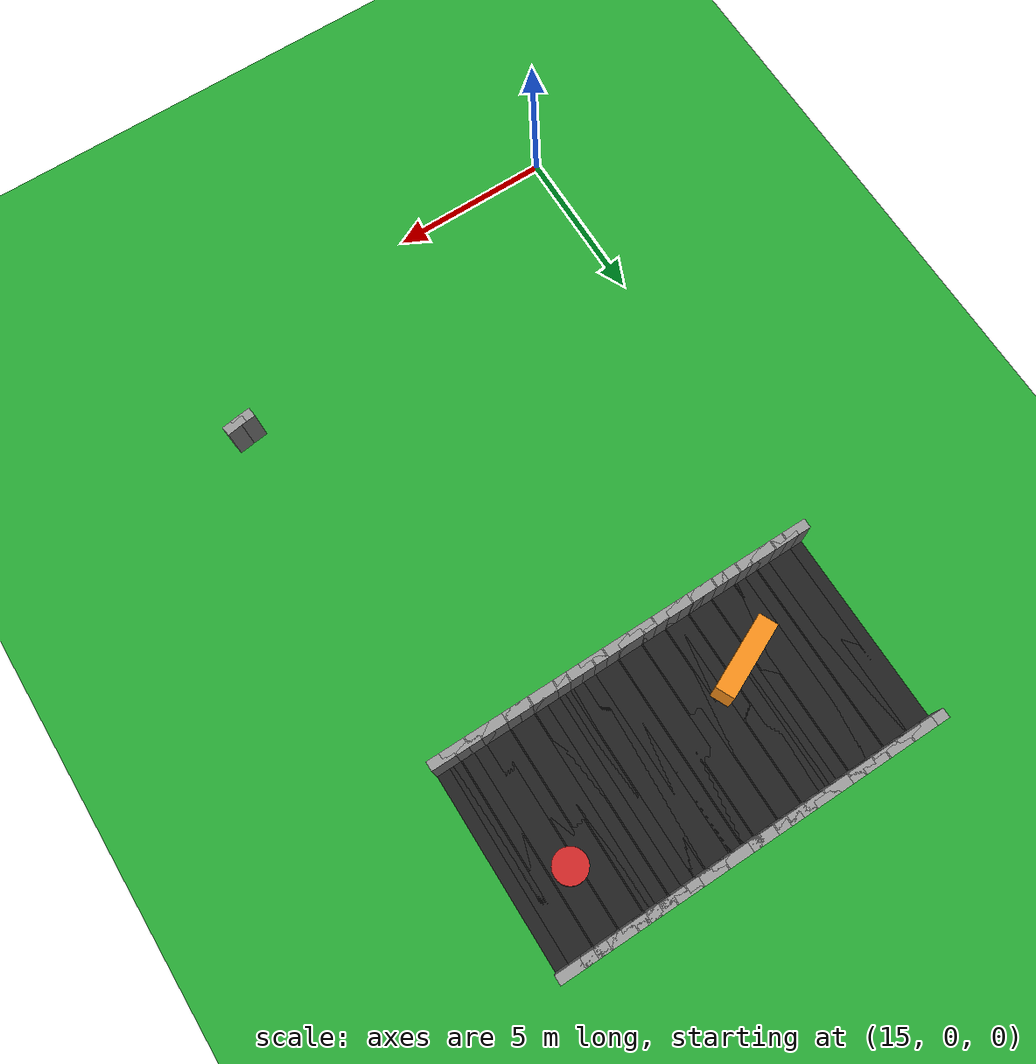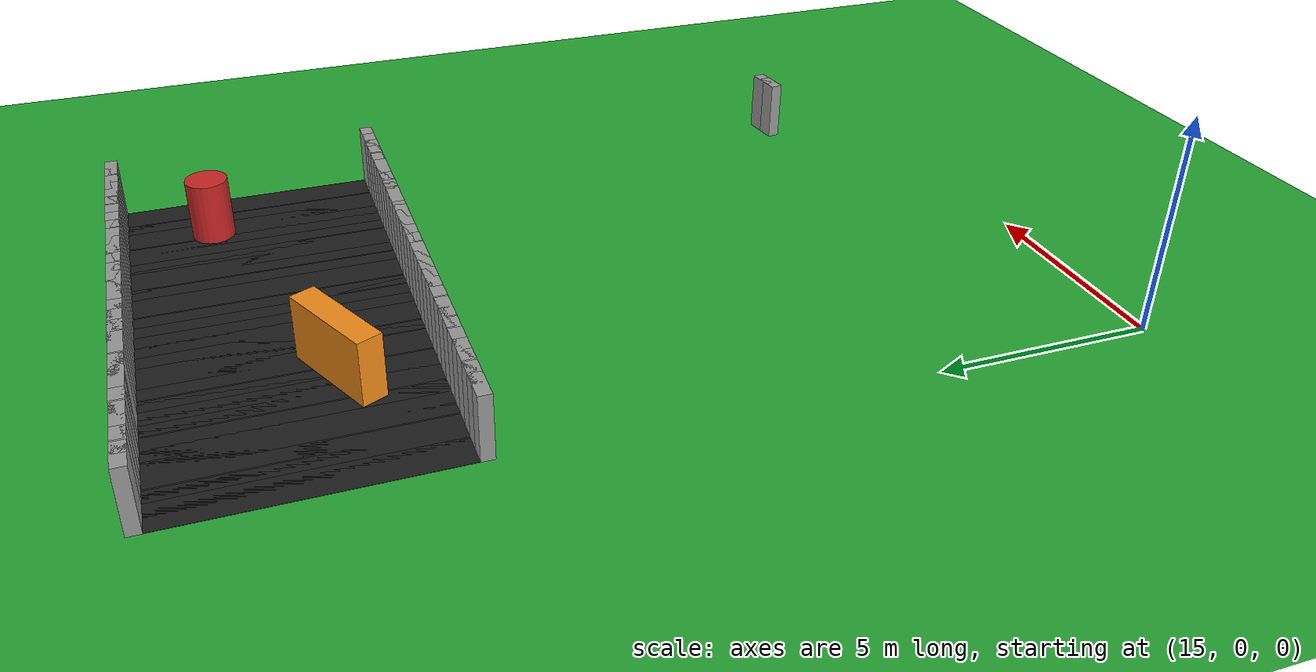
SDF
<sdf version="1.6">
 <world name="obstacle_mid">
  <include><uri>model://sun</uri></include>
  <model name="ground_plane">
   <static>true</static>
   <link name="link">
    <collision name="collision">
     <surface><friction><ode><mu>100</mu><mu2>50</mu2></ode></friction></surface>
     <geometry><plane><normal>0 0 1</normal><size>120 120</size></plane></geometry>
    </collision>
    <visual name="visual">
     <geometry><plane><normal>0 0 1</normal><size>120 120</size></plane></geometry>
     <material>
      <script><uri>file://media/materials/scripts/gazebo.material</uri><name>Gazebo/Green</name></script>
     </material>
    </visual>
   </link>
  </model>
  <model name="curbL_68">
   <static>true</static>
   <pose>27.011 3.209 0.750 0 0 0.11454</pose>
   <link name="link">
    <collision name="collision"><geometry><box><size>0.650 0.300 1.500</size></box></geometry></collision>
    <visual name="visual">
     <geometry><box><size>0.650 0.300 1.500</size></box></geometry>
     <material>
      <script><uri>file://media/materials/scripts/gazebo.material</uri><name>Gazebo/Grey</name></script>
     </material>
    </visual>
   </link>
  </model>
  <model name="curbL_69">
   <static>true</static>
   <pose>27.298 3.247 0.750 0 0 0.14726</pose>
   <link name="link">
    <collision name="collision"><geometry><box><size>0.650 0.300 1.500</size></box></geometry></collision>
    <visual name="visual">
     <geometry><box><size>0.650 0.300 1.500</size></box></geometry>
     <material>
      <script><uri>file://media/materials/scripts/gazebo.material</uri><name>Gazebo/Grey</name></script>
     </material>
    </visual>
   </link>
  </model>
  <model name="asphalt_161">
   <static>true</static>
   <pose>27.206 17.710 0.005 0 0 3.14159</pose>
   <link name="link">
    <visual name="visual">
     <geometry><box><size>0.760 6.000 0.010</size></box></geometry>
     <material>
      <script><uri>file://media/materials/scripts/gazebo.material</uri><name>Gazebo/Black</name></script>
     </material>
    </visual>
   </link>
  </model>
  <model name="curbL_161">
   <static>true</static>
   <pose>27.206 14.560 0.750 0 0 3.14159</pose>
   <link name="link">
    <collision name="collision"><geometry><box><size>0.760 0.300 1.500</size></box></geometry></collision>
    <visual name="visual">
     <geometry><box><size>0.760 0.300 1.500</size></box></geometry>
     <material>
      <script><uri>file://media/materials/scripts/gazebo.material</uri><name>Gazebo/Grey</name></script>
     </material>
    </visual>
   </link>
  </model>
  <model name="curbR_161">
   <static>true</static>
   <pose>27.206 20.860 0.750 0 0 3.14159</pose>
   <link name="link">
    <collision name="collision"><geometry><box><size>0.760 0.300 1.500</size></box></geometry></collision>
    <visual name="visual">
     <geometry><box><size>0.760 0.300 1.500</size></box></geometry>
     <material>
      <script><uri>file://media/materials/scripts/gazebo.material</uri><name>Gazebo/Grey</name></script>
     </material>
    </visual>
   </link>
  </model>
  <model name="asphalt_162">
   <static>true</static>
   <pose>26.806 17.710 0.005 0 0 3.14159</pose>
   <link name="link">
    <visual name="visual">
     <geometry><box><size>0.760 6.000 0.010</size></box></geometry>
     <material>
      <script><uri>file://media/materials/scripts/gazebo.material</uri><name>Gazebo/Black</name></script>
     </material>
    </visual>
   </link>
  </model>
  <model name="curbL_162">
   <static>true</static>
   <pose>26.806 14.560 0.750 0 0 3.14159</pose>
   <link name="link">
    <collision name="collision"><geometry><box><size>0.760 0.300 1.500</size></box></geometry></collision>
    <visual name="visual">
     <geometry><box><size>0.760 0.300 1.500</size></box></geometry>
     <material>
      <script><uri>file://media/materials/scripts/gazebo.material</uri><name>Gazebo/Grey</name></script>
     </material>
    </visual>
   </link>
  </model>
  <model name="curbR_162">
   <static>true</static>
   <pose>26.806 20.860 0.750 0 0 3.14159</pose>
   <link name="link">
    <collision name="collision"><geometry><box><size>0.760 0.300 1.500</size></box></geometry></collision>
    <visual name="visual">
     <geometry><box><size>0.760 0.300 1.500</size></box></geometry>
     <material>
      <script><uri>file://media/materials/scripts/gazebo.material</uri><name>Gazebo/Grey</name></script>
     </material>
    </visual>
   </link>
  </model>
  <model name="asphalt_163">
   <static>true</static>
   <pose>26.406 17.710 0.005 0 0 3.14159</pose>
   <link name="link">
    <visual name="visual">
     <geometry><box><size>0.760 6.000 0.010</size></box></geometry>
     <material>
      <script><uri>file://media/materials/scripts/gazebo.material</uri><name>Gazebo/Black</name></script>
     </material>
    </visual>
   </link>
  </model>
  <model name="curbL_163">
   <static>true</static>
   <pose>26.406 14.560 0.750 0 0 3.14159</pose>
   <link name="link">
    <collision name="collision"><geometry><box><size>0.760 0.300 1.500</size></box></geometry></collision>
    <visual name="visual">
     <geometry><box><size>0.760 0.300 1.500</size></box></geometry>
     <material>
      <script><uri>file://media/materials/scripts/gazebo.material</uri><name>Gazebo/Grey</name></script>
     </material>
    </visual>
   </link>
  </model>
  <model name="curbR_163">
   <static>true</static>
   <pose>26.406 20.860 0.750 0 0 3.14159</pose>
   <link name="link">
    <collision name="collision"><geometry><box><size>0.760 0.300 1.500</size></box></geometry></collision>
    <visual name="visual">
     <geometry><box><size>0.760 0.300 1.500</size></box></geometry>
     <material>
      <script><uri>file://media/materials/scripts/gazebo.material</uri><name>Gazebo/Grey</name></script>
     </material>
    </visual>
   </link>
  </model>
  <model name="asphalt_164">
   <static>true</static>
   <pose>26.006 17.710 0.005 0 0 3.14159</pose>
   <link name="link">
    <visual name="visual">
     <geometry><box><size>0.760 6.000 0.010</size></box></geometry>
     <material>
      <script><uri>file://media/materials/scripts/gazebo.material</uri><name>Gazebo/Black</name></script>
     </material>
    </visual>
   </link>
  </model>
  <model name="curbL_164">
   <static>true</static>
   <pose>26.006 14.560 0.750 0 0 3.14159</pose>
   <link name="link">
    <collision name="collision"><geometry><box><size>0.760 0.300 1.500</size></box></geometry></collision>
    <visual name="visual">
     <geometry><box><size>0.760 0.300 1.500</size></box></geometry>
     <material>
      <script><uri>file://media/materials/scripts/gazebo.material</uri><name>Gazebo/Grey</name></script>
     </material>
    </visual>
   </link>
  </model>
  <model name="curbR_164">
   <static>true</static>
   <pose>26.006 20.860 0.750 0 0 3.14159</pose>
   <link name="link">
    <collision name="collision"><geometry><box><size>0.760 0.300 1.500</size></box></geometry></collision>
    <visual name="visual">
     <geometry><box><size>0.760 0.300 1.500</size></box></geometry>
     <material>
      <script><uri>file://media/materials/scripts/gazebo.material</uri><name>Gazebo/Grey</name></script>
     </material>
    </visual>
   </link>
  </model>
  <model name="asphalt_165">
   <static>true</static>
   <pose>25.606 17.710 0.005 0 0 3.14159</pose>
   <link name="link">
    <visual name="visual">
     <geometry><box><size>0.760 6.000 0.010</size></box></geometry>
     <material>
      <script><uri>file://media/materials/scripts/gazebo.material</uri><name>Gazebo/Black</name></script>
     </material>
    </visual>
   </link>
  </model>
  <model name="curbL_165">
   <static>true</static>
   <pose>25.606 14.560 0.750 0 0 3.14159</pose>
   <link name="link">
    <collision name="collision"><geometry><box><size>0.760 0.300 1.500</size></box></geometry></collision>
    <visual name="visual">
     <geometry><box><size>0.760 0.300 1.500</size></box></geometry>
     <material>
      <script><uri>file://media/materials/scripts/gazebo.material</uri><name>Gazebo/Grey</name></script>
     </material>
    </visual>
   </link>
  </model>
  <model name="curbR_165">
   <static>true</static>
   <pose>25.606 20.860 0.750 0 0 3.14159</pose>
   <link name="link">
    <collision name="collision"><geometry><box><size>0.760 0.300 1.500</size></box></geometry></collision>
    <visual name="visual">
     <geometry><box><size>0.760 0.300 1.500</size></box></geometry>
     <material>
      <script><uri>file://media/materials/scripts/gazebo.material</uri><name>Gazebo/Grey</name></script>
     </material>
    </visual>
   </link>
  </model>
  <model name="asphalt_166">
   <static>true</static>
   <pose>25.206 17.710 0.005 0 0 3.14159</pose>
   <link name="link">
    <visual name="visual">
     <geometry><box><size>0.760 6.000 0.010</size></box></geometry>
     <material>
      <script><uri>file://media/materials/scripts/gazebo.material</uri><name>Gazebo/Black</name></script>
     </material>
    </visual>
   </link>
  </model>
  <model name="curbL_166">
   <static>true</static>
   <pose>25.206 14.560 0.750 0 0 3.14159</pose>
   <link name="link">
    <collision name="collision"><geometry><box><size>0.760 0.300 1.500</size></box></geometry></collision>
    <visual name="visual">
     <geometry><box><size>0.760 0.300 1.500</size></box></geometry>
     <material>
      <script><uri>file://media/materials/scripts/gazebo.material</uri><name>Gazebo/Grey</name></script>
     </material>
    </visual>
   </link>
  </model>
  <model name="curbR_166">
   <static>true</static>
   <pose>25.206 20.860 0.750 0 0 3.14159</pose>
   <link name="link">
    <collision name="collision"><geometry><box><size>0.760 0.300 1.500</size></box></geometry></collision>
    <visual name="visual">
     <geometry><box><size>0.760 0.300 1.500</size></box></geometry>
     <material>
      <script><uri>file://media/materials/scripts/gazebo.material</uri><name>Gazebo/Grey</name></script>
     </material>
    </visual>
   </link>
  </model>
  <model name="asphalt_167">
   <static>true</static>
   <pose>24.806 17.710 0.005 0 0 3.14159</pose>
   <link name="link">
    <visual name="visual">
     <geometry><box><size>0.760 6.000 0.010</size></box></geometry>
     <material>
      <script><uri>file://media/materials/scripts/gazebo.material</uri><name>Gazebo/Black</name></script>
     </material>
    </visual>
   </link>
  </model>
  <model name="curbL_167">
   <static>true</static>
   <pose>24.806 14.560 0.750 0 0 3.14159</pose>
   <link name="link">
    <collision name="collision"><geometry><box><size>0.760 0.300 1.500</size></box></geometry></collision>
    <visual name="visual">
     <geometry><box><size>0.760 0.300 1.500</size></box></geometry>
     <material>
      <script><uri>file://media/materials/scripts/gazebo.material</uri><name>Gazebo/Grey</name></script>
     </material>
    </visual>
   </link>
  </model>
  <model name="curbR_167">
   <static>true</static>
   <pose>24.806 20.860 0.750 0 0 3.14159</pose>
   <link name="link">
    <collision name="collision"><geometry><box><size>0.760 0.300 1.500</size></box></geometry></collision>
    <visual name="visual">
     <geometry><box><size>0.760 0.300 1.500</size></box></geometry>
     <material>
      <script><uri>file://media/materials/scripts/gazebo.material</uri><name>Gazebo/Grey</name></script>
     </material>
    </visual>
   </link>
  </model>
  <model name="asphalt_168">
   <static>true</static>
   <pose>24.406 17.710 0.005 0 0 3.14159</pose>
   <link name="link">
    <visual name="visual">
     <geometry><box><size>0.760 6.000 0.010</size></box></geometry>
     <material>
      <script><uri>file://media/materials/scripts/gazebo.material</uri><name>Gazebo/Black</name></script>
     </material>
    </visual>
   </link>
  </model>
  <model name="curbL_168">
   <static>true</static>
   <pose>24.406 14.560 0.750 0 0 3.14159</pose>
   <link name="link">
    <collision name="collision"><geometry><box><size>0.760 0.300 1.500</size></box></geometry></collision>
    <visual name="visual">
     <geometry><box><size>0.760 0.300 1.500</size></box></geometry>
     <material>
      <script><uri>file://media/materials/scripts/gazebo.material</uri><name>Gazebo/Grey</name></script>
     </material>
    </visual>
   </link>
  </model>
  <model name="curbR_168">
   <static>true</static>
   <pose>24.406 20.860 0.750 0 0 3.14159</pose>
   <link name="link">
    <collision name="collision"><geometry><box><size>0.760 0.300 1.500</size></box></geometry></collision>
    <visual name="visual">
     <geometry><box><size>0.760 0.300 1.500</size></box></geometry>
     <material>
      <script><uri>file://media/materials/scripts/gazebo.material</uri><name>Gazebo/Grey</name></script>
     </material>
    </visual>
   </link>
  </model>
  <model name="asphalt_169">
   <static>true</static>
   <pose>24.006 17.710 0.005 0 0 3.14159</pose>
   <link name="link">
    <visual name="visual">
     <geometry><box><size>0.760 6.000 0.010</size></box></geometry>
     <material>
      <script><uri>file://media/materials/scripts/gazebo.material</uri><name>Gazebo/Black</name></script>
     </material>
    </visual>
   </link>
  </model>
  <model name="curbL_169">
   <static>true</static>
   <pose>24.006 14.560 0.750 0 0 3.14159</pose>
   <link name="link">
    <collision name="collision"><geometry><box><size>0.760 0.300 1.500</size></box></geometry></collision>
    <visual name="visual">
     <geometry><box><size>0.760 0.300 1.500</size></box></geometry>
     <material>
      <script><uri>file://media/materials/scripts/gazebo.material</uri><name>Gazebo/Grey</name></script>
     </material>
    </visual>
   </link>
  </model>
  <model name="curbR_169">
   <static>true</static>
   <pose>24.006 20.860 0.750 0 0 3.14159</pose>
   <link name="link">
    <collision name="collision"><geometry><box><size>0.760 0.300 1.500</size></box></geometry></collision>
    <visual name="visual">
     <geometry><box><size>0.760 0.300 1.500</size></box></geometry>
     <material>
      <script><uri>file://media/materials/scripts/gazebo.material</uri><name>Gazebo/Grey</name></script>
     </material>
    </visual>
   </link>
  </model>
  <model name="asphalt_170">
   <static>true</static>
   <pose>23.606 17.710 0.005 0 0 3.14159</pose>
   <link name="link">
    <visual name="visual">
     <geometry><box><size>0.760 6.000 0.010</size></box></geometry>
     <material>
      <script><uri>file://media/materials/scripts/gazebo.material</uri><name>Gazebo/Black</name></script>
     </material>
    </visual>
   </link>
  </model>
  <model name="curbL_170">
   <static>true</static>
   <pose>23.606 14.560 0.750 0 0 3.14159</pose>
   <link name="link">
    <collision name="collision"><geometry><box><size>0.760 0.300 1.500</size></box></geometry></collision>
    <visual name="visual">
     <geometry><box><size>0.760 0.300 1.500</size></box></geometry>
     <material>
      <script><uri>file://media/materials/scripts/gazebo.material</uri><name>Gazebo/Grey</name></script>
     </material>
    </visual>
   </link>
  </model>
  <model name="curbR_170">
   <static>true</static>
   <pose>23.606 20.860 0.750 0 0 3.14159</pose>
   <link name="link">
    <collision name="collision"><geometry><box><size>0.760 0.300 1.500</size></box></geometry></collision>
    <visual name="visual">
     <geometry><box><size>0.760 0.300 1.500</size></box></geometry>
     <material>
      <script><uri>file://media/materials/scripts/gazebo.material</uri><name>Gazebo/Grey</name></script>
     </material>
    </visual>
   </link>
  </model>
  <model name="asphalt_171">
   <static>true</static>
   <pose>23.206 17.710 0.005 0 0 3.14159</pose>
   <link name="link">
    <visual name="visual">
     <geometry><box><size>0.760 6.000 0.010</size></box></geometry>
     <material>
      <script><uri>file://media/materials/scripts/gazebo.material</uri><name>Gazebo/Black</name></script>
     </material>
    </visual>
   </link>
  </model>
  <model name="curbL_171">
   <static>true</static>
   <pose>23.206 14.560 0.750 0 0 3.14159</pose>
   <link name="link">
    <collision name="collision"><geometry><box><size>0.760 0.300 1.500</size></box></geometry></collision>
    <visual name="visual">
     <geometry><box><size>0.760 0.300 1.500</size></box></geometry>
     <material>
      <script><uri>file://media/materials/scripts/gazebo.material</uri><name>Gazebo/Grey</name></script>
     </material>
    </visual>
   </link>
  </model>
  <model name="curbR_171">
   <static>true</static>
   <pose>23.206 20.860 0.750 0 0 3.14159</pose>
   <link name="link">
    <collision name="collision"><geometry><box><size>0.760 0.300 1.500</size></box></geometry></collision>
    <visual name="visual">
     <geometry><box><size>0.760 0.300 1.500</size></box></geometry>
     <material>
      <script><uri>file://media/materials/scripts/gazebo.material</uri><name>Gazebo/Grey</name></script>
     </material>
    </visual>
   </link>
  </model>
  <model name="asphalt_172">
   <static>true</static>
   <pose>22.806 17.710 0.005 0 0 3.14159</pose>
   <link name="link">
    <visual name="visual">
     <geometry><box><size>0.760 6.000 0.010</size></box></geometry>
     <material>
      <script><uri>file://media/materials/scripts/gazebo.material</uri><name>Gazebo/Black</name></script>
     </material>
    </visual>
   </link>
  </model>
  <model name="curbL_172">
   <static>true</static>
   <pose>22.806 14.560 0.750 0 0 3.14159</pose>
   <link name="link">
    <collision name="collision"><geometry><box><size>0.760 0.300 1.500</size></box></geometry></collision>
    <visual name="visual">
     <geometry><box><size>0.760 0.300 1.500</size></box></geometry>
     <material>
      <script><uri>file://media/materials/scripts/gazebo.material</uri><name>Gazebo/Grey</name></script>
     </material>
    </visual>
   </link>
  </model>
  <model name="curbR_172">
   <static>true</static>
   <pose>22.806 20.860 0.750 0 0 3.14159</pose>
   <link name="link">
    <collision name="collision"><geometry><box><size>0.760 0.300 1.500</size></box></geometry></collision>
    <visual name="visual">
     <geometry><box><size>0.760 0.300 1.500</size></box></geometry>
     <material>
      <script><uri>file://media/materials/scripts/gazebo.material</uri><name>Gazebo/Grey</name></script>
     </material>
    </visual>
   </link>
  </model>
  <model name="asphalt_173">
   <static>true</static>
   <pose>22.406 17.710 0.005 0 0 3.14159</pose>
   <link name="link">
    <visual name="visual">
     <geometry><box><size>0.760 6.000 0.010</size></box></geometry>
     <material>
      <script><uri>file://media/materials/scripts/gazebo.material</uri><name>Gazebo/Black</name></script>
     </material>
    </visual>
   </link>
  </model>
  <model name="curbL_173">
   <static>true</static>
   <pose>22.406 14.560 0.750 0 0 3.14159</pose>
   <link name="link">
    <collision name="collision"><geometry><box><size>0.760 0.300 1.500</size></box></geometry></collision>
    <visual name="visual">
     <geometry><box><size>0.760 0.300 1.500</size></box></geometry>
     <material>
      <script><uri>file://media/materials/scripts/gazebo.material</uri><name>Gazebo/Grey</name></script>
     </material>
    </visual>
   </link>
  </model>
  <model name="curbR_173">
   <static>true</static>
   <pose>22.406 20.860 0.750 0 0 3.14159</pose>
   <link name="link">
    <collision name="collision"><geometry><box><size>0.760 0.300 1.500</size></box></geometry></collision>
    <visual name="visual">
     <geometry><box><size>0.760 0.300 1.500</size></box></geometry>
     <material>
      <script><uri>file://media/materials/scripts/gazebo.material</uri><name>Gazebo/Grey</name></script>
     </material>
    </visual>
   </link>
  </model>
  <model name="asphalt_174">
   <static>true</static>
   <pose>22.006 17.710 0.005 0 0 3.14159</pose>
   <link name="link">
    <visual name="visual">
     <geometry><box><size>0.760 6.000 0.010</size></box></geometry>
     <material>
      <script><uri>file://media/materials/scripts/gazebo.material</uri><name>Gazebo/Black</name></script>
     </material>
    </visual>
   </link>
  </model>
  <model name="curbL_174">
   <static>true</static>
   <pose>22.006 14.560 0.750 0 0 3.14159</pose>
   <link name="link">
    <collision name="collision"><geometry><box><size>0.760 0.300 1.500</size></box></geometry></collision>
    <visual name="visual">
     <geometry><box><size>0.760 0.300 1.500</size></box></geometry>
     <material>
      <script><uri>file://media/materials/scripts/gazebo.material</uri><name>Gazebo/Grey</name></script>
     </material>
    </visual>
   </link>
  </model>
  <model name="curbR_174">
   <static>true</static>
   <pose>22.006 20.860 0.750 0 0 3.14159</pose>
   <link name="link">
    <collision name="collision"><geometry><box><size>0.760 0.300 1.500</size></box></geometry></collision>
    <visual name="visual">
     <geometry><box><size>0.760 0.300 1.500</size></box></geometry>
     <material>
      <script><uri>file://media/materials/scripts/gazebo.material</uri><name>Gazebo/Grey</name></script>
     </material>
    </visual>
   </link>
  </model>
  <model name="asphalt_175">
   <static>true</static>
   <pose>21.606 17.710 0.005 0 0 3.14159</pose>
   <link name="link">
    <visual name="visual">
     <geometry><box><size>0.760 6.000 0.010</size></box></geometry>
     <material>
      <script><uri>file://media/materials/scripts/gazebo.material</uri><name>Gazebo/Black</name></script>
     </material>
    </visual>
   </link>
  </model>
  <model name="curbL_175">
   <static>true</static>
   <pose>21.606 14.560 0.750 0 0 3.14159</pose>
   <link name="link">
    <collision name="collision"><geometry><box><size>0.760 0.300 1.500</size></box></geometry></collision>
    <visual name="visual">
     <geometry><box><size>0.760 0.300 1.500</size></box></geometry>
     <material>
      <script><uri>file://media/materials/scripts/gazebo.material</uri><name>Gazebo/Grey</name></script>
     </material>
    </visual>
   </link>
  </model>
  <model name="curbR_175">
   <static>true</static>
   <pose>21.606 20.860 0.750 0 0 3.14159</pose>
   <link name="link">
    <collision name="collision"><geometry><box><size>0.760 0.300 1.500</size></box></geometry></collision>
    <visual name="visual">
     <geometry><box><size>0.760 0.300 1.500</size></box></geometry>
     <material>
      <script><uri>file://media/materials/scripts/gazebo.material</uri><name>Gazebo/Grey</name></script>
     </material>
    </visual>
   </link>
  </model>
  <model name="asphalt_176">
   <static>true</static>
   <pose>21.206 17.710 0.005 0 0 3.14159</pose>
   <link name="link">
    <visual name="visual">
     <geometry><box><size>0.760 6.000 0.010</size></box></geometry>
     <material>
      <script><uri>file://media/materials/scripts/gazebo.material</uri><name>Gazebo/Black</name></script>
     </material>
    </visual>
   </link>
  </model>
  <model name="curbL_176">
   <static>true</static>
   <pose>21.206 14.560 0.750 0 0 3.14159</pose>
   <link name="link">
    <collision name="collision"><geometry><box><size>0.760 0.300 1.500</size></box></geometry></collision>
    <visual name="visual">
     <geometry><box><size>0.760 0.300 1.500</size></box></geometry>
     <material>
      <script><uri>file://media/materials/scripts/gazebo.material</uri><name>Gazebo/Grey</name></script>
     </material>
    </visual>
   </link>
  </model>
  <model name="curbR_176">
   <static>true</static>
   <pose>21.206 20.860 0.750 0 0 3.14159</pose>
   <link name="link">
    <collision name="collision"><geometry><box><size>0.760 0.300 1.500</size></box></geometry></collision>
    <visual name="visual">
     <geometry><box><size>0.760 0.300 1.500</size></box></geometry>
     <material>
      <script><uri>file://media/materials/scripts/gazebo.material</uri><name>Gazebo/Grey</name></script>
     </material>
    </visual>
   </link>
  </model>
  <model name="asphalt_177">
   <static>true</static>
   <pose>20.806 17.710 0.005 0 0 3.14159</pose>
   <link name="link">
    <visual name="visual">
     <geometry><box><size>0.760 6.000 0.010</size></box></geometry>
     <material>
      <script><uri>file://media/materials/scripts/gazebo.material</uri><name>Gazebo/Black</name></script>
     </material>
    </visual>
   </link>
  </model>
  <model name="curbL_177">
   <static>true</static>
   <pose>20.806 14.560 0.750 0 0 3.14159</pose>
   <link name="link">
    <collision name="collision"><geometry><box><size>0.760 0.300 1.500</size></box></geometry></collision>
    <visual name="visual">
     <geometry><box><size>0.760 0.300 1.500</size></box></geometry>
     <material>
      <script><uri>file://media/materials/scripts/gazebo.material</uri><name>Gazebo/Grey</name></script>
     </material>
    </visual>
   </link>
  </model>
  <model name="curbR_177">
   <static>true</static>
   <pose>20.806 20.860 0.750 0 0 3.14159</pose>
   <link name="link">
    <collision name="collision"><geometry><box><size>0.760 0.300 1.500</size></box></geometry></collision>
    <visual name="visual">
     <geometry><box><size>0.760 0.300 1.500</size></box></geometry>
     <material>
      <script><uri>file://media/materials/scripts/gazebo.material</uri><name>Gazebo/Grey</name></script>
     </material>
    </visual>
   </link>
  </model>
  <model name="asphalt_178">
   <static>true</static>
   <pose>20.406 17.710 0.005 0 0 3.14159</pose>
   <link name="link">
    <visual name="visual">
     <geometry><box><size>0.760 6.000 0.010</size></box></geometry>
     <material>
      <script><uri>file://media/materials/scripts/gazebo.material</uri><name>Gazebo/Black</name></script>
     </material>
    </visual>
   </link>
  </model>
  <model name="curbL_178">
   <static>true</static>
   <pose>20.406 14.560 0.750 0 0 3.14159</pose>
   <link name="link">
    <collision name="collision"><geometry><box><size>0.760 0.300 1.500</size></box></geometry></collision>
    <visual name="visual">
     <geometry><box><size>0.760 0.300 1.500</size></box></geometry>
     <material>
      <script><uri>file://media/materials/scripts/gazebo.material</uri><name>Gazebo/Grey</name></script>
     </material>
    </visual>
   </link>
  </model>
  <model name="curbR_178">
   <static>true</static>
   <pose>20.406 20.860 0.750 0 0 3.14159</pose>
   <link name="link">
    <collision name="collision"><geometry><box><size>0.760 0.300 1.500</size></box></geometry></collision>
    <visual name="visual">
     <geometry><box><size>0.760 0.300 1.500</size></box></geometry>
     <material>
      <script><uri>file://media/materials/scripts/gazebo.material</uri><name>Gazebo/Grey</name></script>
     </material>
    </visual>
   </link>
  </model>
  <model name="asphalt_179">
   <static>true</static>
   <pose>20.006 17.710 0.005 0 0 3.14159</pose>
   <link name="link">
    <visual name="visual">
     <geometry><box><size>0.760 6.000 0.010</size></box></geometry>
     <material>
      <script><uri>file://media/materials/scripts/gazebo.material</uri><name>Gazebo/Black</name></script>
     </material>
    </visual>
   </link>
  </model>
  <model name="curbL_179">
   <static>true</static>
   <pose>20.006 14.560 0.750 0 0 3.14159</pose>
   <link name="link">
    <collision name="collision"><geometry><box><size>0.760 0.300 1.500</size></box></geometry></collision>
    <visual name="visual">
     <geometry><box><size>0.760 0.300 1.500</size></box></geometry>
     <material>
      <script><uri>file://media/materials/scripts/gazebo.material</uri><name>Gazebo/Grey</name></script>
     </material>
    </visual>
   </link>
  </model>
  <model name="curbR_179">
   <static>true</static>
   <pose>20.006 20.860 0.750 0 0 3.14159</pose>
   <link name="link">
    <collision name="collision"><geometry><box><size>0.760 0.300 1.500</size></box></geometry></collision>
    <visual name="visual">
     <geometry><box><size>0.760 0.300 1.500</size></box></geometry>
     <material>
      <script><uri>file://media/materials/scripts/gazebo.material</uri><name>Gazebo/Grey</name></script>
     </material>
    </visual>
   </link>
  </model>
  <model name="asphalt_180">
   <static>true</static>
   <pose>19.606 17.710 0.005 0 0 3.14159</pose>
   <link name="link">
    <visual name="visual">
     <geometry><box><size>0.760 6.000 0.010</size></box></geometry>
     <material>
      <script><uri>file://media/materials/scripts/gazebo.material</uri><name>Gazebo/Black</name></script>
     </material>
    </visual>
   </link>
  </model>
  <model name="curbL_180">
   <static>true</static>
   <pose>19.606 14.560 0.750 0 0 3.14159</pose>
   <link name="link">
    <collision name="collision"><geometry><box><size>0.760 0.300 1.500</size></box></geometry></collision>
    <visual name="visual">
     <geometry><box><size>0.760 0.300 1.500</size></box></geometry>
     <material>
      <script><uri>file://media/materials/scripts/gazebo.material</uri><name>Gazebo/Grey</name></script>
     </material>
    </visual>
   </link>
  </model>
  <model name="curbR_180">
   <static>true</static>
   <pose>19.606 20.860 0.750 0 0 3.14159</pose>
   <link name="link">
    <collision name="collision"><geometry><box><size>0.760 0.300 1.500</size></box></geometry></collision>
    <visual name="visual">
     <geometry><box><size>0.760 0.300 1.500</size></box></geometry>
     <material>
      <script><uri>file://media/materials/scripts/gazebo.material</uri><name>Gazebo/Grey</name></script>
     </material>
    </visual>
   </link>
  </model>
  <model name="asphalt_181">
   <static>true</static>
   <pose>19.206 17.710 0.005 0 0 3.14159</pose>
   <link name="link">
    <visual name="visual">
     <geometry><box><size>0.760 6.000 0.010</size></box></geometry>
     <material>
      <script><uri>file://media/materials/scripts/gazebo.material</uri><name>Gazebo/Black</name></script>
     </material>
    </visual>
   </link>
  </model>
  <model name="curbL_181">
   <static>true</static>
   <pose>19.206 14.560 0.750 0 0 3.14159</pose>
   <link name="link">
    <collision name="collision"><geometry><box><size>0.760 0.300 1.500</size></box></geometry></collision>
    <visual name="visual">
     <geometry><box><size>0.760 0.300 1.500</size></box></geometry>
     <material>
      <script><uri>file://media/materials/scripts/gazebo.material</uri><name>Gazebo/Grey</name></script>
     </material>
    </visual>
   </link>
  </model>
  <model name="curbR_181">
   <static>true</static>
   <pose>19.206 20.860 0.750 0 0 3.14159</pose>
   <link name="link">
    <collision name="collision"><geometry><box><size>0.760 0.300 1.500</size></box></geometry></collision>
    <visual name="visual">
     <geometry><box><size>0.760 0.300 1.500</size></box></geometry>
     <material>
      <script><uri>file://media/materials/scripts/gazebo.material</uri><name>Gazebo/Grey</name></script>
     </material>
    </visual>
   </link>
  </model>
  <model name="asphalt_182">
   <static>true</static>
   <pose>18.806 17.710 0.005 0 0 3.14159</pose>
   <link name="link">
    <visual name="visual">
     <geometry><box><size>0.760 6.000 0.010</size></box></geometry>
     <material>
      <script><uri>file://media/materials/scripts/gazebo.material</uri><name>Gazebo/Black</name></script>
     </material>
    </visual>
   </link>
  </model>
  <model name="curbL_182">
   <static>true</static>
   <pose>18.806 14.560 0.750 0 0 3.14159</pose>
   <link name="link">
    <collision name="collision"><geometry><box><size>0.760 0.300 1.500</size></box></geometry></collision>
    <visual name="visual">
     <geometry><box><size>0.760 0.300 1.500</size></box></geometry>
     <material>
      <script><uri>file://media/materials/scripts/gazebo.material</uri><name>Gazebo/Grey</name></script>
     </material>
    </visual>
   </link>
  </model>
  <model name="curbR_182">
   <static>true</static>
   <pose>18.806 20.860 0.750 0 0 3.14159</pose>
   <link name="link">
    <collision name="collision"><geometry><box><size>0.760 0.300 1.500</size></box></geometry></collision>
    <visual name="visual">
     <geometry><box><size>0.760 0.300 1.500</size></box></geometry>
     <material>
      <script><uri>file://media/materials/scripts/gazebo.material</uri><name>Gazebo/Grey</name></script>
     </material>
    </visual>
   </link>
  </model>
  <model name="asphalt_183">
   <static>true</static>
   <pose>18.406 17.710 0.005 0 0 3.14159</pose>
   <link name="link">
    <visual name="visual">
     <geometry><box><size>0.760 6.000 0.010</size></box></geometry>
     <material>
      <script><uri>file://media/materials/scripts/gazebo.material</uri><name>Gazebo/Black</name></script>
     </material>
    </visual>
   </link>
  </model>
  <model name="curbL_183">
   <static>true</static>
   <pose>18.406 14.560 0.750 0 0 3.14159</pose>
   <link name="link">
    <collision name="collision"><geometry><box><size>0.760 0.300 1.500</size></box></geometry></collision>
    <visual name="visual">
     <geometry><box><size>0.760 0.300 1.500</size></box></geometry>
     <material>
      <script><uri>file://media/materials/scripts/gazebo.material</uri><name>Gazebo/Grey</name></script>
     </material>
    </visual>
   </link>
  </model>
  <model name="curbR_183">
   <static>true</static>
   <pose>18.406 20.860 0.750 0 0 3.14159</pose>
   <link name="link">
    <collision name="collision"><geometry><box><size>0.760 0.300 1.500</size></box></geometry></collision>
    <visual name="visual">
     <geometry><box><size>0.760 0.300 1.500</size></box></geometry>
     <material>
      <script><uri>file://media/materials/scripts/gazebo.material</uri><name>Gazebo/Grey</name></script>
     </material>
    </visual>
   </link>
  </model>
  <model name="asphalt_184">
   <static>true</static>
   <pose>18.006 17.710 0.005 0 0 3.14159</pose>
   <link name="link">
    <visual name="visual">
     <geometry><box><size>0.760 6.000 0.010</size></box></geometry>
     <material>
      <script><uri>file://media/materials/scripts/gazebo.material</uri><name>Gazebo/Black</name></script>
     </material>
    </visual>
   </link>
  </model>
  <model name="curbL_184">
   <static>true</static>
   <pose>18.006 14.560 0.750 0 0 3.14159</pose>
   <link name="link">
    <collision name="collision"><geometry><box><size>0.760 0.300 1.500</size></box></geometry></collision>
    <visual name="visual">
     <geometry><box><size>0.760 0.300 1.500</size></box></geometry>
     <material>
      <script><uri>file://media/materials/scripts/gazebo.material</uri><name>Gazebo/Grey</name></script>
     </material>
    </visual>
   </link>
  </model>
  <model name="curbR_184">
   <static>true</static>
   <pose>18.006 20.860 0.750 0 0 3.14159</pose>
   <link name="link">
    <collision name="collision"><geometry><box><size>0.760 0.300 1.500</size></box></geometry></collision>
    <visual name="visual">
     <geometry><box><size>0.760 0.300 1.500</size></box></geometry>
     <material>
      <script><uri>file://media/materials/scripts/gazebo.material</uri><name>Gazebo/Grey</name></script>
     </material>
    </visual>
   </link>
  </model>
  <model name="asphalt_185">
   <static>true</static>
   <pose>17.606 17.710 0.005 0 0 3.14159</pose>
   <link name="link">
    <visual name="visual">
     <geometry><box><size>0.760 6.000 0.010</size></box></geometry>
     <material>
      <script><uri>file://media/materials/scripts/gazebo.material</uri><name>Gazebo/Black</name></script>
     </material>
    </visual>
   </link>
  </model>
  <model name="curbL_185">
   <static>true</static>
   <pose>17.606 14.560 0.750 0 0 3.14159</pose>
   <link name="link">
    <collision name="collision"><geometry><box><size>0.760 0.300 1.500</size></box></geometry></collision>
    <visual name="visual">
     <geometry><box><size>0.760 0.300 1.500</size></box></geometry>
     <material>
      <script><uri>file://media/materials/scripts/gazebo.material</uri><name>Gazebo/Grey</name></script>
     </material>
    </visual>
   </link>
  </model>
  <model name="curbR_185">
   <static>true</static>
   <pose>17.606 20.860 0.750 0 0 3.14159</pose>
   <link name="link">
    <collision name="collision"><geometry><box><size>0.760 0.300 1.500</size></box></geometry></collision>
    <visual name="visual">
     <geometry><box><size>0.760 0.300 1.500</size></box></geometry>
     <material>
      <script><uri>file://media/materials/scripts/gazebo.material</uri><name>Gazebo/Grey</name></script>
     </material>
    </visual>
   </link>
  </model>
  <model name="asphalt_186">
   <static>true</static>
   <pose>17.206 17.710 0.005 0 0 3.14159</pose>
   <link name="link">
    <visual name="visual">
     <geometry><box><size>0.760 6.000 0.010</size></box></geometry>
     <material>
      <script><uri>file://media/materials/scripts/gazebo.material</uri><name>Gazebo/Black</name></script>
     </material>
    </visual>
   </link>
  </model>
  <model name="curbL_186">
   <static>true</static>
   <pose>17.206 14.560 0.750 0 0 3.14159</pose>
   <link name="link">
    <collision name="collision"><geometry><box><size>0.760 0.300 1.500</size></box></geometry></collision>
    <visual name="visual">
     <geometry><box><size>0.760 0.300 1.500</size></box></geometry>
     <material>
      <script><uri>file://media/materials/scripts/gazebo.material</uri><name>Gazebo/Grey</name></script>
     </material>
    </visual>
   </link>
  </model>
  <model name="curbR_186">
   <static>true</static>
   <pose>17.206 20.860 0.750 0 0 3.14159</pose>
   <link name="link">
    <collision name="collision"><geometry><box><size>0.760 0.300 1.500</size></box></geometry></collision>
    <visual name="visual">
     <geometry><box><size>0.760 0.300 1.500</size></box></geometry>
     <material>
      <script><uri>file://media/materials/scripts/gazebo.material</uri><name>Gazebo/Grey</name></script>
     </material>
    </visual>
   </link>
  </model>
  <model name="asphalt_187">
   <static>true</static>
   <pose>16.806 17.710 0.005 0 0 3.14159</pose>
   <link name="link">
    <visual name="visual">
     <geometry><box><size>0.760 6.000 0.010</size></box></geometry>
     <material>
      <script><uri>file://media/materials/scripts/gazebo.material</uri><name>Gazebo/Black</name></script>
     </material>
    </visual>
   </link>
  </model>
  <model name="curbL_187">
   <static>true</static>
   <pose>16.806 14.560 0.750 0 0 3.14159</pose>
   <link name="link">
    <collision name="collision"><geometry><box><size>0.760 0.300 1.500</size></box></geometry></collision>
    <visual name="visual">
     <geometry><box><size>0.760 0.300 1.500</size></box></geometry>
     <material>
      <script><uri>file://media/materials/scripts/gazebo.material</uri><name>Gazebo/Grey</name></script>
     </material>
    </visual>
   </link>
  </model>
  <model name="curbR_187">
   <static>true</static>
   <pose>16.806 20.860 0.750 0 0 3.14159</pose>
   <link name="link">
    <collision name="collision"><geometry><box><size>0.760 0.300 1.500</size></box></geometry></collision>
    <visual name="visual">
     <geometry><box><size>0.760 0.300 1.500</size></box></geometry>
     <material>
      <script><uri>file://media/materials/scripts/gazebo.material</uri><name>Gazebo/Grey</name></script>
     </material>
    </visual>
   </link>
  </model>
  <model name="asphalt_188">
   <static>true</static>
   <pose>16.406 17.710 0.005 0 0 3.14159</pose>
   <link name="link">
    <visual name="visual">
     <geometry><box><size>0.760 6.000 0.010</size></box></geometry>
     <material>
      <script><uri>file://media/materials/scripts/gazebo.material</uri><name>Gazebo/Black</name></script>
     </material>
    </visual>
   </link>
  </model>
  <model name="curbL_188">
   <static>true</static>
   <pose>16.406 14.560 0.750 0 0 3.14159</pose>
   <link name="link">
    <collision name="collision"><geometry><box><size>0.760 0.300 1.500</size></box></geometry></collision>
    <visual name="visual">
     <geometry><box><size>0.760 0.300 1.500</size></box></geometry>
     <material>
      <script><uri>file://media/materials/scripts/gazebo.material</uri><name>Gazebo/Grey</name></script>
     </material>
    </visual>
   </link>
  </model>
  <model name="curbR_188">
   <static>true</static>
   <pose>16.406 20.860 0.750 0 0 3.14159</pose>
   <link name="link">
    <collision name="collision"><geometry><box><size>0.760 0.300 1.500</size></box></geometry></collision>
    <visual name="visual">
     <geometry><box><size>0.760 0.300 1.500</size></box></geometry>
     <material>
      <script><uri>file://media/materials/scripts/gazebo.material</uri><name>Gazebo/Grey</name></script>
     </material>
    </visual>
   </link>
  </model>
  <model name="asphalt_189">
   <static>true</static>
   <pose>16.006 17.710 0.005 0 0 3.14159</pose>
   <link name="link">
    <visual name="visual">
     <geometry><box><size>0.760 6.000 0.010</size></box></geometry>
     <material>
      <script><uri>file://media/materials/scripts/gazebo.material</uri><name>Gazebo/Black</name></script>
     </material>
    </visual>
   </link>
  </model>
  <model name="curbL_189">
   <static>true</static>
   <pose>16.006 14.560 0.750 0 0 3.14159</pose>
   <link name="link">
    <collision name="collision"><geometry><box><size>0.760 0.300 1.500</size></box></geometry></collision>
    <visual name="visual">
     <geometry><box><size>0.760 0.300 1.500</size></box></geometry>
     <material>
      <script><uri>file://media/materials/scripts/gazebo.material</uri><name>Gazebo/Grey</name></script>
     </material>
    </visual>
   </link>
  </model>
  <model name="curbR_189">
   <static>true</static>
   <pose>16.006 20.860 0.750 0 0 3.14159</pose>
   <link name="link">
    <collision name="collision"><geometry><box><size>0.760 0.300 1.500</size></box></geometry></collision>
    <visual name="visual">
     <geometry><box><size>0.760 0.300 1.500</size></box></geometry>
     <material>
      <script><uri>file://media/materials/scripts/gazebo.material</uri><name>Gazebo/Grey</name></script>
     </material>
    </visual>
   </link>
  </model>
  <model name="asphalt_190">
   <static>true</static>
   <pose>15.606 17.710 0.005 0 0 3.14159</pose>
   <link name="link">
    <visual name="visual">
     <geometry><box><size>0.760 6.000 0.010</size></box></geometry>
     <material>
      <script><uri>file://media/materials/scripts/gazebo.material</uri><name>Gazebo/Black</name></script>
     </material>
    </visual>
   </link>
  </model>
  <model name="curbL_190">
   <static>true</static>
   <pose>15.606 14.560 0.750 0 0 3.14159</pose>
   <link name="link">
    <collision name="collision"><geometry><box><size>0.760 0.300 1.500</size></box></geometry></collision>
    <visual name="visual">
     <geometry><box><size>0.760 0.300 1.500</size></box></geometry>
     <material>
      <script><uri>file://media/materials/scripts/gazebo.material</uri><name>Gazebo/Grey</name></script>
     </material>
    </visual>
   </link>
  </model>
  <model name="curbR_190">
   <static>true</static>
   <pose>15.606 20.860 0.750 0 0 3.14159</pose>
   <link name="link">
    <collision name="collision"><geometry><box><size>0.760 0.300 1.500</size></box></geometry></collision>
    <visual name="visual">
     <geometry><box><size>0.760 0.300 1.500</size></box></geometry>
     <material>
      <script><uri>file://media/materials/scripts/gazebo.material</uri><name>Gazebo/Grey</name></script>
     </material>
    </visual>
   </link>
  </model>
  <model name="obs_10">
   <static>true</static>
   <pose>25.812 18.710 0.750 0 0 0</pose>
   <link name="link">
    <collision name="collision">
     <geometry><cylinder><radius>0.500</radius><length>1.500</length></cylinder></geometry>
    </collision>
    <visual name="visual">
     <geometry><cylinder><radius>0.500</radius><length>1.500</length></cylinder></geometry>
     <material>
      <script><uri>file://media/materials/scripts/gazebo.material</uri><name>Gazebo/Red</name></script>
     </material>
    </visual>
   </link>
  </model>
  <model name="obs_11">
   <static>true</static>
   <pose>18.812 16.710 0.750 0 0 3.57792</pose>
   <link name="link">
    <collision name="collision"><geometry><box><size>2.400 0.600 1.500</size></box></geometry></collision>
    <visual name="visual">
     <geometry><box><size>2.400 0.600 1.500</size></box></geometry>
     <material>
      <script><uri>file://media/materials/scripts/gazebo.material</uri><name>Gazebo/Orange</name></script>
     </material>
    </visual>
   </link>
  </model>
 </world>
</sdf>
